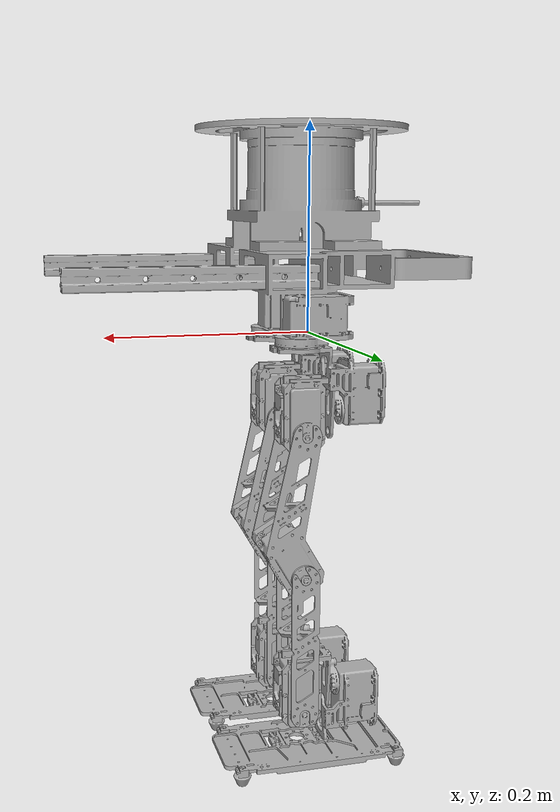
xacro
<?xml version="1.0" ?>
<robot name="zealot" xmlns:xacro="http://www.ros.org/wiki/xacro">

<xacro:include filename="$(find zealot_description)/urdf/materials.xacro" />
<xacro:include filename="$(find zealot_description)/urdf/zealot.trans" />
<xacro:include filename="$(find zealot_description)/urdf/zealot.gazebo" />
<link name="base_link">
  <inertial>
    <origin xyz="0.011606570753639786 -9.061627302688335e-06 0.1106691321859194" rpy="0 0 0"/>
    <mass value="11.365858854893565"/>
    <inertia ixx="0.062084" iyy="0.063994" izz="0.055109" ixy="-2e-06" iyz="-6e-06" ixz="0.001556"/>
  </inertial>
  <visual>
    <origin xyz="0 0 0" rpy="0 0 0"/>
    <geometry>
      <mesh filename="file://$(find zealot_description)/meshes/base_link.stl" scale="0.001 0.001 0.001"/>
    </geometry>
    <material name="silver"/>
  </visual>
  <collision>
    <origin xyz="0 0 0" rpy="0 0 0"/>
    <geometry>
      <mesh filename="file://$(find zealot_description)/meshes/base_link.stl" scale="0.001 0.001 0.001"/>
    </geometry>
  </collision>
</link>

<link name="velodyne"/>
<joint name="lidar_joint" type="fixed">
  <parent link="base_link"/>
  <child  link="velodyne"/>
  <origin xyz="0.011306570753639786 -9.061627302688335e-06 0.152" rpy="0 0 0"/>
</joint>

<link name="right_hipjoint_pitch_1">
  <inertial>
    <origin xyz="0.038053074253933505 9.061261951895383e-06 -0.002895874311847277" rpy="0 0 0"/>
    <mass value="0.7994976795430209"/>
    <inertia ixx="0.000395" iyy="0.000382" izz="0.000267" ixy="-0.0" iyz="-3e-06" ixz="2.3e-05"/>
  </inertial>
  <visual>
    <origin xyz="0.018602 0.045 0.0695" rpy="0 0 0"/>
    <geometry>
      <mesh filename="file://$(find zealot_description)/meshes/right_hipjoint_pitch_1.stl" scale="0.001 0.001 0.001"/>
    </geometry>
    <material name="silver"/>
  </visual>
  <collision>
    <origin xyz="0.018602 0.045 0.0695" rpy="0 0 0"/>
    <geometry>
      <mesh filename="file://$(find zealot_description)/meshes/right_hipjoint_pitch_1.stl" scale="0.001 0.001 0.001"/>
    </geometry>
  </collision>
</link>

<link name="left_hipjoint_pitch_1">
  <inertial>
    <origin xyz="0.03805307453870613 -9.062957449956777e-06 -0.002895872453760495" rpy="0 0 0"/>
    <mass value="0.7994976235700836"/>
    <inertia ixx="0.000395" iyy="0.000382" izz="0.000267" ixy="0.0" iyz="3e-06" ixz="2.3e-05"/>
  </inertial>
  <visual>
    <origin xyz="0.018602 -0.045 0.0695" rpy="0 0 0"/>
    <geometry>
      <mesh filename="file://$(find zealot_description)/meshes/left_hipjoint_pitch_1.stl" scale="0.001 0.001 0.001"/>
    </geometry>
    <material name="silver"/>
  </visual>
  <collision>
    <origin xyz="0.018602 -0.045 0.0695" rpy="0 0 0"/>
    <geometry>
      <mesh filename="file://$(find zealot_description)/meshes/left_hipjoint_pitch_1.stl" scale="0.001 0.001 0.001"/>
    </geometry>
  </collision>
</link>

<link name="left_middle_leg_1">
  <inertial>
    <origin xyz="0.008957337499018739 -0.026013550259184393 -0.11676816804761428" rpy="0 0 0"/>
    <mass value="0.8322714506735266"/>
    <inertia ixx="0.000938" iyy="0.000845" izz="0.000339" ixy="2e-06" iyz="3e-06" ixz="-7.2e-05"/>
  </inertial>
  <visual>
    <origin xyz="-0.021898 -0.071 0.0895" rpy="0 0 0"/>
    <geometry>
      <mesh filename="file://$(find zealot_description)/meshes/left_middle_leg_1.stl" scale="0.001 0.001 0.001"/>
    </geometry>
    <material name="silver"/>
  </visual>
  <collision>
    <origin xyz="-0.021898 -0.071 0.0895" rpy="0 0 0"/>
    <geometry>
      <mesh filename="file://$(find zealot_description)/meshes/left_middle_leg_1.stl" scale="0.001 0.001 0.001"/>
    </geometry>
  </collision>
</link>

<link name="right_middle_leg_1">
  <inertial>
    <origin xyz="0.008957345698257499 0.026013413888078513 -0.11676817396555894" rpy="0 0 0"/>
    <mass value="0.8322715098033127"/>
    <inertia ixx="0.000938" iyy="0.000845" izz="0.000339" ixy="-2e-06" iyz="-3e-06" ixz="-7.2e-05"/>
  </inertial>
  <visual>
    <origin xyz="-0.021898 0.071 0.0895" rpy="0 0 0"/>
    <geometry>
      <mesh filename="file://$(find zealot_description)/meshes/right_middle_leg_1.stl" scale="0.001 0.001 0.001"/>
    </geometry>
    <material name="silver"/>
  </visual>
  <collision>
    <origin xyz="-0.021898 0.071 0.0895" rpy="0 0 0"/>
    <geometry>
      <mesh filename="file://$(find zealot_description)/meshes/right_middle_leg_1.stl" scale="0.001 0.001 0.001"/>
    </geometry>
  </collision>
</link>

<link name="left_lower_leg_1">
  <inertial>
    <origin xyz="-0.00018849879196688318 -0.025998165327886985 -0.06788649486445611" rpy="0 0 0"/>
    <mass value="0.10974623051687235"/>
    <inertia ixx="0.000263" iyy="0.000201" izz="7.9e-05" ixy="-0.0" iyz="0.0" ixz="1e-06"/>
  </inertial>
  <visual>
    <origin xyz="-0.021898 -0.071 0.2295" rpy="0 0 0"/>
    <geometry>
      <mesh filename="file://$(find zealot_description)/meshes/left_lower_leg_1.stl" scale="0.001 0.001 0.001"/>
    </geometry>
    <material name="silver"/>
  </visual>
  <collision>
    <origin xyz="-0.021898 -0.071 0.2295" rpy="0 0 0"/>
    <geometry>
      <mesh filename="file://$(find zealot_description)/meshes/left_lower_leg_1.stl" scale="0.001 0.001 0.001"/>
    </geometry>
  </collision>
</link>

<link name="left_ankle_pitch_1">
  <inertial>
    <origin xyz="-0.0024470362551210385 -0.026009291373849705 0.017104127558421944" rpy="0 0 0"/>
    <mass value="0.7994976235700851"/>
    <inertia ixx="0.000395" iyy="0.000382" izz="0.000267" ixy="0.0" iyz="3e-06" ixz="2.3e-05"/>
  </inertial>
  <visual>
    <origin xyz="-0.021899 -0.071001 0.3695" rpy="0 0 0"/>
    <geometry>
      <mesh filename="file://$(find zealot_description)/meshes/left_ankle_pitch_1.stl" scale="0.001 0.001 0.001"/>
    </geometry>
    <material name="silver"/>
  </visual>
  <collision>
    <origin xyz="-0.021899 -0.071001 0.3695" rpy="0 0 0"/>
    <geometry>
      <mesh filename="file://$(find zealot_description)/meshes/left_ankle_pitch_1.stl" scale="0.001 0.001 0.001"/>
    </geometry>
  </collision>
</link>

<link name="right_foot_1">
  <inertial>
    <origin xyz="0.004668773682356421 -0.005778613439945665 -0.03625900660141734" rpy="0 0 0"/>
    <mass value="1.0884519024049462"/>
    <inertia ixx="0.001203" iyy="0.002956" izz="0.002851" ixy="0.000171" iyz="-0.000144" ixz="0.000613"/>
  </inertial>
  <visual>
    <origin xyz="0.018601 0.045001 0.3495" rpy="0 0 0"/>
    <geometry>
      <mesh filename="file://$(find zealot_description)/meshes/right_foot_1.stl" scale="0.001 0.001 0.001"/>
    </geometry>
    <material name="silver"/>
  </visual>
  <collision>
    <origin xyz="0.018601 0.045001 0.3495" rpy="0 0 0"/>
    <geometry>
      <mesh filename="file://$(find zealot_description)/meshes/right_foot_1.stl" scale="0.001 0.001 0.001"/>
    </geometry>
  </collision>
</link>

<link name="left_foot_1">
  <inertial>
    <origin xyz="0.004668771794329316 0.005778461202235442 -0.036258990881799624" rpy="0 0 0"/>
    <mass value="1.0884519419865217"/>
    <inertia ixx="0.001203" iyy="0.002956" izz="0.002851" ixy="-0.000171" iyz="0.000144" ixz="0.000613"/>
  </inertial>
  <visual>
    <origin xyz="0.018601 -0.045001 0.3495" rpy="0 0 0"/>
    <geometry>
      <mesh filename="file://$(find zealot_description)/meshes/left_foot_1.stl" scale="0.001 0.001 0.001"/>
    </geometry>
    <material name="silver"/>
  </visual>
  <collision>
    <origin xyz="0.018601 -0.045001 0.3495" rpy="0 0 0"/>
    <geometry>
      <mesh filename="file://$(find zealot_description)/meshes/left_foot_1.stl" scale="0.001 0.001 0.001"/>
    </geometry>
  </collision>
</link>

<link name="right_lower_leg_1">
  <inertial>
    <origin xyz="-0.00018849881957317544 0.026001355685012648 -0.06788649487584444" rpy="0 0 0"/>
    <mass value="0.10974623051687242"/>
    <inertia ixx="0.000263" iyy="0.000201" izz="7.9e-05" ixy="-0.0" iyz="-0.0" ixz="1e-06"/>
  </inertial>
  <visual>
    <origin xyz="-0.021898 0.071001 0.2295" rpy="0 0 0"/>
    <geometry>
      <mesh filename="file://$(find zealot_description)/meshes/right_lower_leg_1.stl" scale="0.001 0.001 0.001"/>
    </geometry>
    <material name="silver"/>
  </visual>
  <collision>
    <origin xyz="-0.021898 0.071001 0.2295" rpy="0 0 0"/>
    <geometry>
      <mesh filename="file://$(find zealot_description)/meshes/right_lower_leg_1.stl" scale="0.001 0.001 0.001"/>
    </geometry>
  </collision>
</link>

<link name="right_ankle_pitch_1">
  <inertial>
    <origin xyz="-0.0024470365904269917 0.02600901574342311 0.017104125692206706" rpy="0 0 0"/>
    <mass value="0.7994976795430198"/>
    <inertia ixx="0.000395" iyy="0.000382" izz="0.000267" ixy="-0.0" iyz="-3e-06" ixz="2.3e-05"/>
  </inertial>
  <visual>
    <origin xyz="-0.021899 0.071001 0.3695" rpy="0 0 0"/>
    <geometry>
      <mesh filename="file://$(find zealot_description)/meshes/right_ankle_pitch_1.stl" scale="0.001 0.001 0.001"/>
    </geometry>
    <material name="silver"/>
  </visual>
  <collision>
    <origin xyz="-0.021899 0.071001 0.3695" rpy="0 0 0"/>
    <geometry>
      <mesh filename="file://$(find zealot_description)/meshes/right_ankle_pitch_1.stl" scale="0.001 0.001 0.001"/>
    </geometry>
  </collision>
</link>

<link name="right_hipjoint_abd_1">
  <inertial>
    <origin xyz="-0.05591426666899567 1.0370827807637539e-10 -0.048554165651671206" rpy="0 0 0"/>
    <mass value="0.6286646646290869"/>
    <inertia ixx="0.000289" iyy="0.000482" izz="0.000312" ixy="0.0" iyz="0.0" ixz="-0.000113"/>
  </inertial>
  <visual>
    <origin xyz="-0.022338 0.045 0.0015" rpy="0 0 0"/>
    <geometry>
      <mesh filename="file://$(find zealot_description)/meshes/right_hipjoint_abd_1.stl" scale="0.001 0.001 0.001"/>
    </geometry>
    <material name="silver"/>
  </visual>
  <collision>
    <origin xyz="-0.022338 0.045 0.0015" rpy="0 0 0"/>
    <geometry>
      <mesh filename="file://$(find zealot_description)/meshes/right_hipjoint_abd_1.stl" scale="0.001 0.001 0.001"/>
    </geometry>
  </collision>
</link>

<link name="left_hipjoint_abd_1">
  <inertial>
    <origin xyz="-0.05591426678232435 -3.2614189127144755e-12 -0.04805416557930881" rpy="0 0 0"/>
    <mass value="0.6286646646192796"/>
    <inertia ixx="0.000289" iyy="0.000482" izz="0.000312" ixy="-0.0" iyz="-0.0" ixz="-0.000113"/>
  </inertial>
  <visual>
    <origin xyz="-0.022338 -0.045 0.002" rpy="0 0 0"/>
    <geometry>
      <mesh filename="file://$(find zealot_description)/meshes/left_hipjoint_abd_1.stl" scale="0.001 0.001 0.001"/>
    </geometry>
    <material name="silver"/>
  </visual>
  <collision>
    <origin xyz="-0.022338 -0.045 0.002" rpy="0 0 0"/>
    <geometry>
      <mesh filename="file://$(find zealot_description)/meshes/left_hipjoint_abd_1.stl" scale="0.001 0.001 0.001"/>
    </geometry>
  </collision>
</link>

<joint name="rotate_11" type="continuous">
  <origin xyz="-0.04094 0.0 -0.068" rpy="0 0 0"/>
  <parent link="right_hipjoint_abd_1"/>
  <child link="right_hipjoint_pitch_1"/>
  <axis xyz="1.0 -0.0 0.0"/>
</joint>

<joint name="rotate_10" type="continuous">
  <origin xyz="-0.04094 0.0 -0.0675" rpy="0 0 0"/>
  <parent link="left_hipjoint_abd_1"/>
  <child link="left_hipjoint_pitch_1"/>
  <axis xyz="1.0 -0.0 0.0"/>
</joint>

<joint name="rotate_14" type="continuous">
  <origin xyz="0.0405 0.026 -0.02" rpy="0 0 0"/>
  <parent link="left_hipjoint_pitch_1"/>
  <child link="left_middle_leg_1"/>
  <axis xyz="-0.0 1.0 3e-06"/>
</joint>

<joint name="rotate_15" type="continuous">
  <origin xyz="0.0405 -0.026 -0.02" rpy="0 0 0"/>
  <parent link="right_hipjoint_pitch_1"/>
  <child link="right_middle_leg_1"/>
  <axis xyz="-0.0 -1.0 4e-06"/>
</joint>

<joint name="rotate_16" type="continuous">
  <origin xyz="0.0 0.0 -0.14" rpy="0 0 0"/>
  <parent link="left_middle_leg_1"/>
  <child link="left_lower_leg_1"/>
  <axis xyz="-0.0 1.0 3e-06"/>
</joint>

<joint name="rotate_18" type="continuous">
  <origin xyz="1e-06 1e-06 -0.14" rpy="0 0 0"/>
  <parent link="left_lower_leg_1"/>
  <child link="left_ankle_pitch_1"/>
  <axis xyz="-0.0 1.0 3e-06"/>
</joint>

<joint name="rotate_21" type="continuous">
  <origin xyz="-0.0405 0.026 0.02" rpy="0 0 0"/>
  <parent link="right_ankle_pitch_1"/>
  <child link="right_foot_1"/>
  <axis xyz="1.0 -0.0 0.0"/>
</joint>

<joint name="rotate_20" type="continuous">
  <origin xyz="-0.0405 -0.026 0.02" rpy="0 0 0"/>
  <parent link="left_ankle_pitch_1"/>
  <child link="left_foot_1"/>
  <axis xyz="1.0 0.0 0.0"/>
</joint>

<joint name="rotate_17" type="continuous">
  <origin xyz="0.0 -1e-06 -0.14" rpy="0 0 0"/>
  <parent link="right_middle_leg_1"/>
  <child link="right_lower_leg_1"/>
  <axis xyz="-0.0 -1.0 4e-06"/>
</joint>

<joint name="rotate_19" type="continuous">
  <origin xyz="1e-06 0.0 -0.14" rpy="0 0 0"/>
  <parent link="right_lower_leg_1"/>
  <child link="right_ankle_pitch_1"/>
  <axis xyz="-0.0 -1.0 4e-06"/>
</joint>

<joint name="rotate_13" type="continuous">
  <origin xyz="0.022338 -0.045 -0.0015" rpy="0 0 0"/>
  <parent link="base_link"/>
  <child link="right_hipjoint_abd_1"/>
  <axis xyz="0.0 0.0 -1.0"/>
</joint>

<joint name="rotate_12" type="continuous">
  <origin xyz="0.022338 0.045 -0.002" rpy="0 0 0"/>
  <parent link="base_link"/>
  <child link="left_hipjoint_abd_1"/>
  <axis xyz="0.0 0.0 -1.0"/>
</joint>

</robot>

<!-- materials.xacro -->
<robot name="zealot" xmlns:xacro="http://www.ros.org/wiki/xacro" >

<material name="silver">
  <color rgba="0.700 0.700 0.700 1.000"/>
</material>

</robot>

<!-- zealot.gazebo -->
<robot name="zealot" xmlns:xacro="http://www.ros.org/wiki/xacro" >

<xacro:property name="body_color" value="Gazebo/Silver" />

<gazebo>
  <plugin name="control" filename="libgazebo_ros_control.so"/>
</gazebo>
<gazebo reference="base_link">
  <material>${body_color}</material>
  <mu1>0.2</mu1>
  <mu2>0.2</mu2>
  <self_collide>true</self_collide>
  <gravity>true</gravity>
</gazebo>

<gazebo reference="right_hipjoint_pitch_1">
  <material>${body_color}</material>
  <mu1>0.2</mu1>
  <mu2>0.2</mu2>
  <self_collide>true</self_collide>
</gazebo>

<gazebo reference="left_hipjoint_pitch_1">
  <material>${body_color}</material>
  <mu1>0.2</mu1>
  <mu2>0.2</mu2>
  <self_collide>true</self_collide>
</gazebo>

<gazebo reference="left_middle_leg_1">
  <material>${body_color}</material>
  <mu1>0.2</mu1>
  <mu2>0.2</mu2>
  <self_collide>true</self_collide>
</gazebo>

<gazebo reference="right_middle_leg_1">
  <material>${body_color}</material>
  <mu1>0.2</mu1>
  <mu2>0.2</mu2>
  <self_collide>true</self_collide>
</gazebo>

<gazebo reference="left_lower_leg_1">
  <material>${body_color}</material>
  <mu1>0.2</mu1>
  <mu2>0.2</mu2>
  <self_collide>true</self_collide>
</gazebo>

<gazebo reference="left_ankle_pitch_1">
  <material>${body_color}</material>
  <mu1>0.2</mu1>
  <mu2>0.2</mu2>
  <self_collide>true</self_collide>
</gazebo>

<gazebo reference="right_foot_1">
  <material>${body_color}</material>
  <mu1>0.2</mu1>
  <mu2>0.2</mu2>
  <self_collide>true</self_collide>
</gazebo>

<gazebo reference="left_foot_1">
  <material>${body_color}</material>
  <mu1>0.2</mu1>
  <mu2>0.2</mu2>
  <self_collide>true</self_collide>
</gazebo>

<gazebo reference="right_lower_leg_1">
  <material>${body_color}</material>
  <mu1>0.2</mu1>
  <mu2>0.2</mu2>
  <self_collide>true</self_collide>
</gazebo>

<gazebo reference="right_ankle_pitch_1">
  <material>${body_color}</material>
  <mu1>0.2</mu1>
  <mu2>0.2</mu2>
  <self_collide>true</self_collide>
</gazebo>

<gazebo reference="right_hipjoint_abd_1">
  <material>${body_color}</material>
  <mu1>0.2</mu1>
  <mu2>0.2</mu2>
  <self_collide>true</self_collide>
</gazebo>

<gazebo reference="left_hipjoint_abd_1">
  <material>${body_color}</material>
  <mu1>0.2</mu1>
  <mu2>0.2</mu2>
  <self_collide>true</self_collide>
</gazebo>

</robot>
